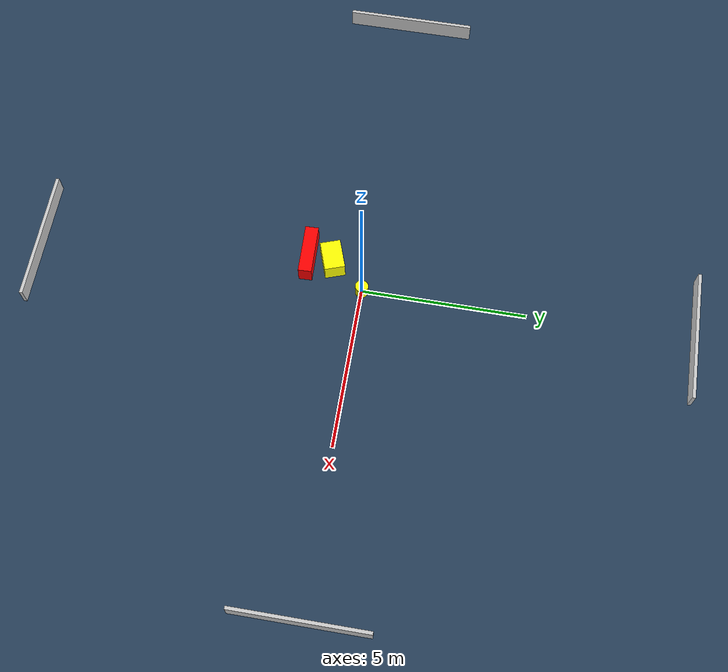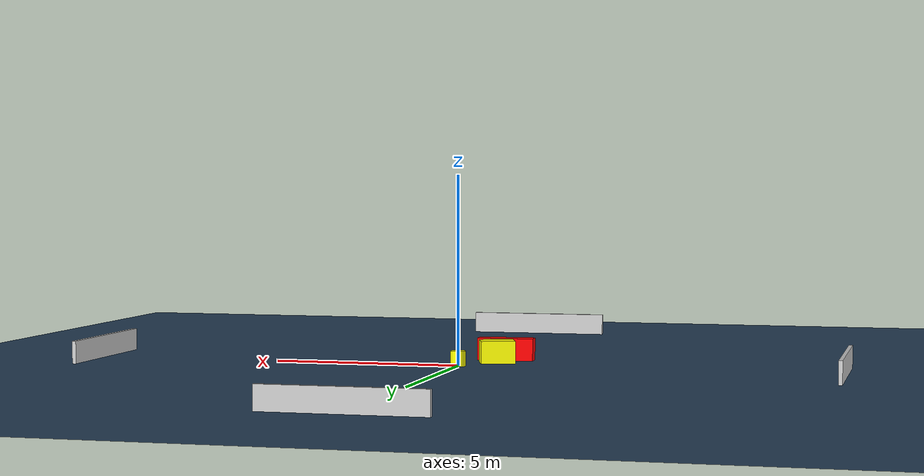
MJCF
<?xml version="1.0" ?>
<mujoco model="generated_environment">
  <option timestep="0.01" integrator="RK4" cone="elliptic"/>
  <default>
    <geom density="1"/>
  </default>
  <asset>
    <texture builtin="gradient" height="3072" name="skybox" rgb1="0.3 0.5 0.7" rgb2="0 0 0" type="skybox" width="512"/>
    <texture builtin="checker" height="300" name="groundplane" rgb1="0.2 0.3 0.4" rgb2="0.1 0.2 0.3" type="2d" width="300"/>
    <material name="groundplane" reflectance="0.2" texrepeat="5 5" texture="groundplane"/>
  </asset>
  <worldbody>
    <light dir="0 0 -1" directional="true" pos="0 0 1.5"/>
    <geom condim="3" friction="0.5 0.005 0.001" material="groundplane" name="floor" pos="0 0 0" size="0 0 0.05" type="plane"/>
    <body name="walls">
      <geom name="wall_1" condim="4" pos="-10.0 0.0 0.3" rgba="0.800000011920929 0.800000011920929 0.800000011920929 1.0" size="0.05 2.0 0.3" type="box"/>
      <geom name="wall_2" condim="4" pos="10.0 0.0 0.3" rgba="0.800000011920929 0.800000011920929 0.800000011920929 1.0" size="0.05 2.0 0.3" type="box"/>
      <geom name="wall_3" condim="4" pos="0.0 -10.0 0.3" rgba="0.800000011920929 0.800000011920929 0.800000011920929 1.0" size="2.0 0.05 0.3" type="box"/>
      <geom name="wall_4" condim="4" pos="0.0 10.0 0.3" rgba="0.800000011920929 0.800000011920929 0.800000011920929 1.0" size="2.0 0.05 0.3" type="box"/>
    </body>
    <body name="robot">
      <joint name="joint_x" type="slide" pos="0 0 0" axis="1 0 0"/>
      <joint name="joint_y" type="slide" pos="0 0 0" axis="0 1 0"/>
      <geom name="robot" type="cylinder" pos="0.0 0.0 0.2" size="0.2 0.2 0.0" mass="5.0" friction="1.0 0.005 0.0001" condim="4" rgba="1.0 1.0 0.0 1.0"/>
    </body>
    <body name="obstacle_1_movable">
      <geom name="obstacle_1_movable" condim="4" pos="-0.8058602708958025 -1.037430031448509 0.3" euler="0 0 19.38079106681348" friction="0.0 0.005 0.001" rgba="1.0 1.0 0.0 1.0" size="0.45567014981080783 0.3116895107344937 0.3" type="box" mass="0.1"/>
      <joint type="free"/>
    </body>
    <body name="obstacle_2_static">
      <geom name="obstacle_2_static" condim="4" pos="-0.8793353691980393 -1.7952513018807315 0.3" euler="0 0 181.86040532754464" friction="0.0 0.005 0.001" rgba="1.0 0.0 0.0 1.0" size="0.7517283596743134 0.20399578706478802 0.3" type="box"/>
    </body>
  </worldbody>
  <actuator>
    <motor name="actuator_x" joint="joint_x" gear="1" ctrlrange="-1 1"/>
    <motor name="actuator_y" joint="joint_y" gear="1" ctrlrange="-1 1"/>
  </actuator>
</mujoco>
